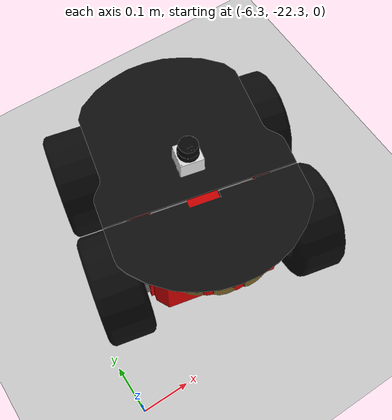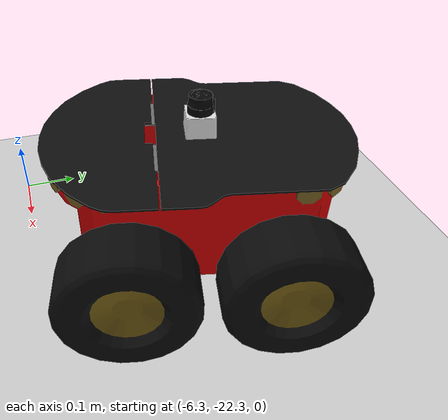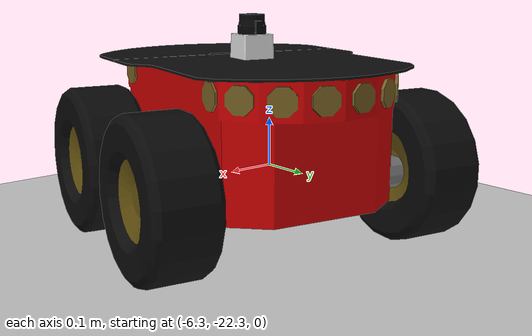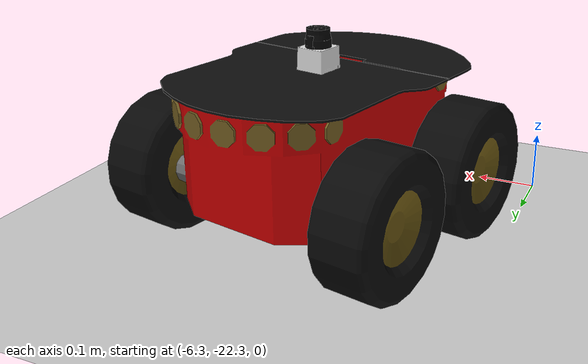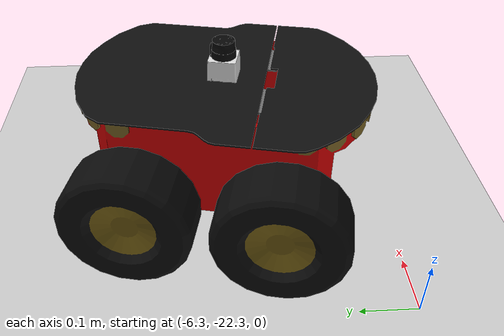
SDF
<sdf version="1.6">
 <world name="default">
  <light name="sun" type="directional">
   <pose>0 0 10 0 -0 0</pose>
   <diffuse>0.8 0.8 0.8 1</diffuse>
   <specular>0.1 0.1 0.1 1</specular>
   <attenuation>
    <range>1000</range>
    <constant>0.9</constant>
    <linear>0.01</linear>
    <quadratic>0.001</quadratic>
   </attenuation>
   <direction>-0.5 0.5 -1</direction>
  </light>
  <model name="ground_plane">
   <static>1</static>
   <link name="link">
    <collision name="collision">
     <geometry><plane><normal>0 0 1</normal><size>100 100</size></plane></geometry>
     <surface><friction><ode><mu>100</mu><mu2>50</mu2></ode></friction></surface>
    </collision>
    <visual name="visual">
     <cast_shadows>0</cast_shadows>
     <geometry><plane><normal>0 0 1</normal><size>100 100</size></plane></geometry>
     <material>
      <script><uri>file://media/materials/scripts/gazebo.material</uri><name>Gazebo/Grey</name></script>
     </material>
    </visual>
    <velocity_decay><linear>0</linear><angular>0</angular></velocity_decay>
   </link>
  </model>
  <physics name="default_physics" default="0" type="ode">
   <real_time_update_rate>1000</real_time_update_rate>
   <max_step_size>0.001</max_step_size>
   <real_time_factor>1</real_time_factor>
  </physics>
  <scene><ambient>0.2 0.2 0.2 1</ambient><background>0.7 0.7 0.7 1</background><shadows>1</shadows></scene>
  <model name="Pioneer3AT">
   <pose>-6.00122 -21.9999 0.170004 -1e-06 -4e-06 -1.78218</pose>
   <static>0</static>
   <link name="chassis">
    <inertial>
     <mass>14</mass>
     <inertia><ixx>0.3338</ixx><ixy>0</ixy><ixz>0</ixz><iyy>0.4783</iyy><iyz>0</iyz><izz>0.3338</izz></inertia>
    </inertial>
    <collision name="collision"><geometry><box><size>0.501 0.4 0.19</size></box></geometry></collision>
    <visual name="visual">
     <geometry><mesh><uri>model://pioneer3at/meshes/chassis.dae</uri><scale>1 1 1</scale></mesh></geometry>
    </visual>
    <velocity_decay><linear>0</linear><angular>0</angular></velocity_decay>
   </link>
   <link name="right_front_wheel">
    <pose>0.125 -0.201 -0.06 1.5707 -0 0</pose>
    <collision name="collision">
     <geometry><cylinder><radius>0.11</radius><length>0.075</length></cylinder></geometry>
     <surface><friction><ode><mu>1</mu><mu2>1</mu2><slip1>0.5</slip1><slip2>0</slip2></ode></friction></surface>
    </collision>
    <visual name="visual">
     <geometry><mesh><uri>model://pioneer3at/meshes/wheel.dae</uri><scale>1 1 1</scale></mesh></geometry>
    </visual>
    <velocity_decay><linear>0</linear><angular>0</angular></velocity_decay>
    <inertial>
     <inertia><ixx>1</ixx><ixy>0</ixy><ixz>0</ixz><iyy>1</iyy><iyz>0</iyz><izz>1</izz></inertia>
     <mass>1</mass>
    </inertial>
   </link>
   <link name="left_front_wheel">
    <pose>0.125 0.201 -0.06 1.5707 -0 0</pose>
    <collision name="collision">
     <geometry><cylinder><radius>0.11</radius><length>0.075</length></cylinder></geometry>
     <surface><friction><ode><mu>1</mu><mu2>1</mu2><slip1>0.5</slip1><slip2>0</slip2></ode></friction></surface>
    </collision>
    <visual name="visual">
     <geometry><mesh><uri>model://pioneer3at/meshes/wheel.dae</uri><scale>1 1 1</scale></mesh></geometry>
    </visual>
    <velocity_decay><linear>0</linear><angular>0</angular></velocity_decay>
    <inertial>
     <inertia><ixx>1</ixx><ixy>0</ixy><ixz>0</ixz><iyy>1</iyy><iyz>0</iyz><izz>1</izz></inertia>
     <mass>1</mass>
    </inertial>
   </link>
   <link name="right_rear_wheel">
    <pose>-0.125 -0.201 -0.06 1.5707 -0 0</pose>
    <collision name="collision">
     <geometry><cylinder><radius>0.11</radius><length>0.075</length></cylinder></geometry>
     <surface><friction><ode><mu>1</mu><mu2>1</mu2><slip1>0.5</slip1><slip2>0</slip2></ode></friction></surface>
    </collision>
    <visual name="visual">
     <geometry><mesh><uri>model://pioneer3at/meshes/wheel.dae</uri><scale>1 1 1</scale></mesh></geometry>
    </visual>
    <velocity_decay><linear>0</linear><angular>0</angular></velocity_decay>
    <inertial>
     <inertia><ixx>1</ixx><ixy>0</ixy><ixz>0</ixz><iyy>1</iyy><iyz>0</iyz><izz>1</izz></inertia>
     <mass>1</mass>
    </inertial>
   </link>
   <link name="left_rear_wheel">
    <pose>-0.125 0.201 -0.06 1.5707 -0 0</pose>
    <collision name="collision">
     <geometry><cylinder><radius>0.11</radius><length>0.075</length></cylinder></geometry>
     <surface><friction><ode><mu>1</mu><mu2>1</mu2><slip1>0.5</slip1><slip2>0</slip2></ode></friction></surface>
    </collision>
    <visual name="visual">
     <geometry><mesh><uri>model://pioneer3at/meshes/wheel.dae</uri><scale>1 1 1</scale></mesh></geometry>
    </visual>
    <velocity_decay><linear>0</linear><angular>0</angular></velocity_decay>
    <inertial>
     <inertia><ixx>1</ixx><ixy>0</ixy><ixz>0</ixz><iyy>1</iyy><iyz>0</iyz><izz>1</izz></inertia>
     <mass>1</mass>
    </inertial>
   </link>
   <joint name="right_front" type="revolute">
    <child>right_front_wheel</child>
    <parent>chassis</parent>
    <axis>
     <xyz>0 1 0</xyz>
     <limit><lower>-1e+16</lower><upper>1e+16</upper></limit>
     <use_parent_model_frame>1</use_parent_model_frame>
     <dynamics><spring_reference>0</spring_reference><spring_stiffness>0</spring_stiffness></dynamics>
    </axis>
   </joint>
   <joint name="right_rear" type="revolute">
    <child>right_rear_wheel</child>
    <parent>chassis</parent>
    <axis>
     <xyz>0 1 0</xyz>
     <limit><lower>-1e+16</lower><upper>1e+16</upper></limit>
     <use_parent_model_frame>1</use_parent_model_frame>
     <dynamics><spring_reference>0</spring_reference><spring_stiffness>0</spring_stiffness></dynamics>
    </axis>
   </joint>
   <joint name="left_front" type="revolute">
    <child>left_front_wheel</child>
    <parent>chassis</parent>
    <axis>
     <xyz>0 1 0</xyz>
     <limit><lower>-1e+16</lower><upper>1e+16</upper></limit>
     <use_parent_model_frame>1</use_parent_model_frame>
     <dynamics><spring_reference>0</spring_reference><spring_stiffness>0</spring_stiffness></dynamics>
    </axis>
   </joint>
   <joint name="left_rear" type="revolute">
    <child>left_rear_wheel</child>
    <parent>chassis</parent>
    <axis>
     <xyz>0 1 0</xyz>
     <limit><lower>-1e+16</lower><upper>1e+16</upper></limit>
     <use_parent_model_frame>1</use_parent_model_frame>
     <dynamics><spring_reference>0</spring_reference><spring_stiffness>0</spring_stiffness></dynamics>
    </axis>
   </joint>
   <link name="sonar_link">
    <inertial>
     <mass>0.1</mass>
     <inertia><ixx>1</ixx><ixy>0</ixy><ixz>0</ixz><iyy>1</iyy><iyz>0</iyz><izz>1</izz></inertia>
    </inertial>
    <visual name="visual">
     <geometry><mesh><uri>model://hokuyo/meshes/hokuyo.dae</uri><scale>1 1 1</scale></mesh></geometry>
    </visual>
    <collision name="collision-base">
     <pose>0 0 -0.0145 0 -0 0</pose>
     <geometry><box><size>0.05 0.05 0.041</size></box></geometry>
    </collision>
    <collision name="collision-top">
     <pose>0 0 0.0205 0 -0 0</pose>
     <geometry><cylinder><radius>0.021</radius><length>0.029</length></cylinder></geometry>
    </collision>
    <sensor name="sonar_sensor_left" type="sonar">
     <pose>0 0 0 -3.01069 -1.47159 3.14159</pose>
     <sonar><min>0</min><max>1.5</max><radius>0.195</radius></sonar>
     <plugin name="sonar" filename="libSonarPlugin.so"/>
     <always_on>1</always_on>
     <update_rate>30</update_rate>
     <visualize>1</visualize>
    </sensor>
    <sensor name="sonar_sensor_right" type="sonar">
     <pose>0 0 0 3.01069 -1.47159 -3.14159</pose>
     <sonar><min>0</min><max>1.5</max><radius>0.195</radius></sonar>
     <plugin name="sonar" filename="libSonarPlugin.so"/>
     <always_on>1</always_on>
     <update_rate>30</update_rate>
     <visualize>1</visualize>
    </sensor>
    <velocity_decay><linear>0</linear><angular>0</angular></velocity_decay>
    <pose>0 0 0.13 0 -0 0</pose>
   </link>
   <joint name="sonar_joint" type="revolute">
    <child>sonar_link</child>
    <parent>chassis</parent>
    <axis>
     <xyz>0 0 1</xyz>
     <limit><upper>0</upper><lower>0</lower></limit>
     <use_parent_model_frame>1</use_parent_model_frame>
     <dynamics><spring_reference>0</spring_reference><spring_stiffness>0</spring_stiffness></dynamics>
    </axis>
   </joint>
   <plugin name="SkidSteerDrivePlugin" filename="libSkidSteerDrivePlugin.so"/>
  </model>
  <gravity>0 0 -9.8</gravity>
  <magnetic_field>6e-06 2.3e-05 -4.2e-05</magnetic_field>
  <atmosphere type="adiabatic"/>
  <spherical_coordinates>
   <surface_model>EARTH_WGS84</surface_model>
   <latitude_deg>0</latitude_deg>
   <longitude_deg>0</longitude_deg>
   <elevation>0</elevation>
   <heading_deg>0</heading_deg>
  </spherical_coordinates>
 </world>
</sdf>
